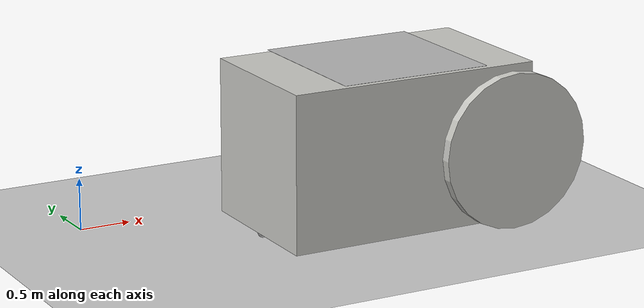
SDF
<sdf version="1.4">
 <world name="default">
  <light name="sun" type="directional">
   <pose>0 0 10 0 -0 0</pose>
   <diffuse>0.8 0.8 0.8 1</diffuse>
   <specular>0.2 0.2 0.2 1</specular>
   <attenuation>
    <range>1000</range>
    <constant>0.9</constant>
    <linear>0.01</linear>
    <quadratic>0.001</quadratic>
   </attenuation>
   <direction>-0.5 0.1 -0.9</direction>
  </light>
  <physics type="ode">
   <max_step_size>0.001</max_step_size>
   <real_time_factor>1</real_time_factor>
   <real_time_update_rate>1000</real_time_update_rate>
   <gravity>0 0 -9.8</gravity>
  </physics>
  <scene><ambient>0.4 0.4 0.4 1</ambient><background>0.7 0.7 0.7 1</background><shadows>1</shadows></scene>
  <spherical_coordinates>
   <surface_model>EARTH_WGS84</surface_model>
   <latitude_deg>0</latitude_deg>
   <longitude_deg>0</longitude_deg>
   <elevation>0</elevation>
   <heading_deg>0</heading_deg>
  </spherical_coordinates>
  <model name="MBZIRC_field_0">
   <static>1</static>
   <link name="link">
    <collision name="collision">
     <geometry><plane><normal>0 0 1</normal><size>140 60</size></plane></geometry>
     <surface><friction><ode><mu>100</mu><mu2>50</mu2></ode></friction></surface>
    </collision>
    <visual name="visual">
     <cast_shadows>0</cast_shadows>
     <geometry><plane><normal>0 0 1</normal><size>140 60</size></plane></geometry>
     <material>
      <script>
       <uri>model://MBZIRC_field/materials/scripts</uri>
       <uri>model://MBZIRC_field/materials/textures</uri>
       <name>Field/Image</name>
      </script>
     </material>
    </visual>
    <velocity_decay><linear>0</linear><angular>0</angular></velocity_decay>
   </link>
  </model>
  <model name="my_robot">
   <static>0</static>
   <link name="chassis">
    <pose>0 0 0.1 0 -0 0</pose>
    <collision name="collision"><geometry><box><size>2.5 1.5 1.5</size></box></geometry></collision>
    <visual name="visual">
     <geometry><box><size>2.5 1.5 1.5</size></box></geometry>
     <material>
      <script><uri>file://media/materials/scripts/gazebo.material</uri><name>Gazebo/CeilingTiled</name></script>
     </material>
    </visual>
    <visual name="target">
     <pose>0 0 0.77 0 -0 0</pose>
     <cast_shadows>0</cast_shadows>
     <geometry><plane><normal>0 0 1</normal><size>1.5 1.5</size></plane></geometry>
     <material>
      <script>
       <uri>model://my_robot/materials/scripts</uri>
       <uri>model://my_robot/materials/textures</uri>
       <name>Target/Image</name>
      </script>
     </material>
    </visual>
    <collision name="caster_collision">
     <pose>-1.2 0 -0.75 0 -0 0</pose>
     <geometry><sphere><radius>0.05</radius></sphere></geometry>
     <surface><friction><ode><mu>0</mu><mu2>0</mu2><slip1>1</slip1><slip2>1</slip2></ode></friction></surface>
    </collision>
    <visual name="caster_visual">
     <pose>-1.2 0 -0.75 0 -0 0</pose>
     <geometry><sphere><radius>0.05</radius></sphere></geometry>
    </visual>
    <velocity_decay><linear>0</linear><angular>0</angular></velocity_decay>
    <inertial>
     <inertia><ixx>1</ixx><ixy>0</ixy><ixz>0</ixz><iyy>1</iyy><iyz>0</iyz><izz>1</izz></inertia>
     <mass>1</mass>
    </inertial>
   </link>
   <link name="left_wheel">
    <pose>1 0.85 0.05 0 1.5707 1.5707</pose>
    <collision name="collision">
     <geometry><cylinder><radius>0.75</radius><length>0.1</length></cylinder></geometry>
    </collision>
    <visual name="visual">
     <geometry><cylinder><radius>0.75</radius><length>0.1</length></cylinder></geometry>
     <material>
      <script><uri>file://media/materials/scripts/gazebo.material</uri><name>Gazebo/CeilingTiled</name></script>
     </material>
    </visual>
    <velocity_decay><linear>0</linear><angular>0</angular></velocity_decay>
    <inertial>
     <inertia><ixx>1</ixx><ixy>0</ixy><ixz>0</ixz><iyy>1</iyy><iyz>0</iyz><izz>1</izz></inertia>
     <mass>1</mass>
    </inertial>
   </link>
   <link name="right_wheel">
    <pose>1 -0.85 0.05 0 1.5707 1.5707</pose>
    <collision name="collision">
     <geometry><cylinder><radius>0.75</radius><length>0.1</length></cylinder></geometry>
    </collision>
    <visual name="visual">
     <geometry><cylinder><radius>0.75</radius><length>0.1</length></cylinder></geometry>
     <material>
      <script><uri>file://media/materials/scripts/gazebo.material</uri><name>Gazebo/CeilingTiled</name></script>
     </material>
    </visual>
    <velocity_decay><linear>0</linear><angular>0</angular></velocity_decay>
    <inertial>
     <inertia><ixx>1</ixx><ixy>0</ixy><ixz>0</ixz><iyy>1</iyy><iyz>0</iyz><izz>1</izz></inertia>
     <mass>1</mass>
    </inertial>
   </link>
   <joint name="left_wheel_hinge" type="revolute">
    <pose>0 0 -0.03 0 -0 0</pose>
    <child>left_wheel</child>
    <parent>chassis</parent>
    <axis><xyz>0 1 0</xyz><limit><lower>-1e+16</lower><upper>1e+16</upper></limit></axis>
   </joint>
   <joint name="right_wheel_hinge" type="revolute">
    <pose>0 0 0.03 0 -0 0</pose>
    <child>right_wheel</child>
    <parent>chassis</parent>
    <axis><xyz>0 1 0</xyz><limit><lower>-1e+16</lower><upper>1e+16</upper></limit></axis>
   </joint>
   <plugin name="model_push" filename="libmodel_push.so"/>
   <pose>2.59964 -1.00144 0.7 0 -5e-06 0.001431</pose>
  </model>
 </world>
</sdf>
